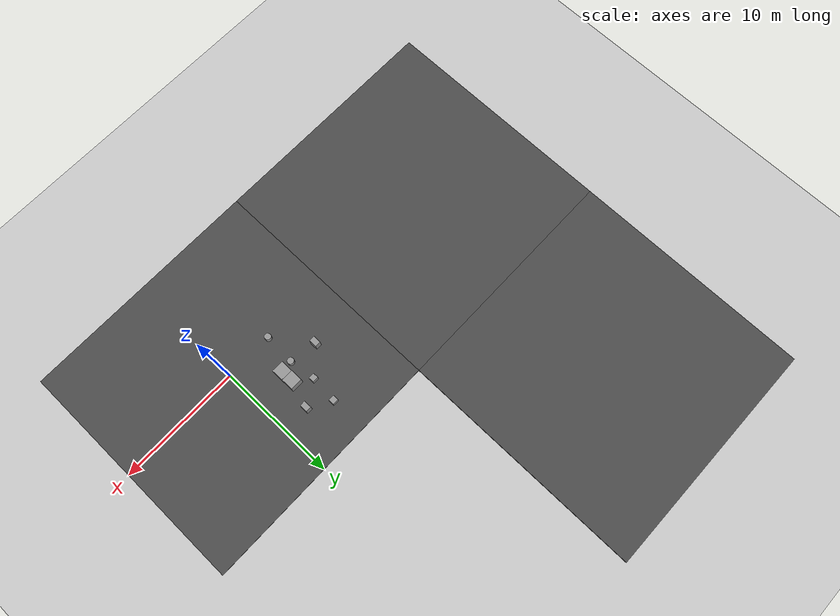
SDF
<sdf version="1.7">
 <world name="default">
  <model name="ground_plane">
   <static>1</static>
   <link name="link">
    <collision name="collision">
     <geometry><plane><normal>0 0 1</normal><size>100 100</size></plane></geometry>
     <surface>
      <contact><collide_bitmask>65535</collide_bitmask></contact>
      <friction><ode><mu>100</mu><mu2>50</mu2></ode></friction>
     </surface>
    </collision>
    <visual name="visual">
     <cast_shadows>0</cast_shadows>
     <geometry><plane><normal>0 0 1</normal><size>100 100</size></plane></geometry>
     <material>
      <script><uri>file://media/materials/scripts/gazebo.material</uri><name>Gazebo/Grey</name></script>
     </material>
    </visual>
   </link>
  </model>
  <model name="asphalt_plane">
   <static>1</static>
   <link name="link">
    <collision name="collision"><geometry><box><size>20 20 0.1</size></box></geometry></collision>
    <visual name="visual">
     <cast_shadows>0</cast_shadows>
     <geometry><box><size>20 20 0.1</size></box></geometry>
     <material>
      <script>
       <uri>model://asphalt_plane/materials/scripts</uri>
       <uri>model://asphalt_plane/materials/textures</uri>
       <name>vrc/asphalt</name>
      </script>
     </material>
    </visual>
   </link>
  </model>
  <model name="asphalt_plane_clone_3">
   <static>1</static>
   <link name="link">
    <collision name="collision"><geometry><box><size>20 20 0.1</size></box></geometry></collision>
    <visual name="visual">
     <cast_shadows>0</cast_shadows>
     <geometry><box><size>20 20 0.1</size></box></geometry>
     <material>
      <script>
       <uri>model://asphalt_plane/materials/scripts</uri>
       <uri>model://asphalt_plane/materials/textures</uri>
       <name>vrc/asphalt</name>
      </script>
     </material>
    </visual>
   </link>
   <pose>-20 0 0 0 -0 0</pose>
  </model>
  <model name="asphalt_plane_clone_4">
   <static>1</static>
   <link name="link">
    <collision name="collision"><geometry><box><size>20 20 0.1</size></box></geometry></collision>
    <visual name="visual">
     <cast_shadows>0</cast_shadows>
     <geometry><box><size>20 20 0.1</size></box></geometry>
     <material>
      <script>
       <uri>model://asphalt_plane/materials/scripts</uri>
       <uri>model://asphalt_plane/materials/textures</uri>
       <name>vrc/asphalt</name>
      </script>
     </material>
    </visual>
   </link>
   <pose>-20 20 0 0 -0 0</pose>
  </model>
  <model name="unit_cylinder">
   <pose>-3.88535 2.58839 0.294836 1e-06 -2e-06 0.000325</pose>
   <link name="link">
    <inertial>
     <mass>1</mass>
     <inertia><ixx>0.145833</ixx><ixy>0</ixy><ixz>0</ixz><iyy>0.145833</iyy><iyz>0</iyz><izz>0.125</izz></inertia>
    </inertial>
    <collision name="collision">
     <geometry><cylinder><radius>0.264047</radius><length>0.48967</length></cylinder></geometry>
    </collision>
    <visual name="visual">
     <geometry><cylinder><radius>0.264047</radius><length>0.48967</length></cylinder></geometry>
     <material>
      <script><name>Gazebo/Grey</name><uri>file://media/materials/scripts/gazebo.material</uri></script>
     </material>
    </visual>
   </link>
  </model>
  <model name="unit_cylinder_clone">
   <pose>-3.99999 2e-05 0.294835 -0 -1e-06 9.5e-05</pose>
   <link name="link">
    <inertial>
     <mass>1</mass>
     <inertia><ixx>0.145833</ixx><ixy>0</ixy><ixz>0</ixz><iyy>0.145833</iyy><iyz>0</iyz><izz>0.125</izz></inertia>
    </inertial>
    <collision name="collision">
     <geometry><cylinder><radius>0.264047</radius><length>0.48967</length></cylinder></geometry>
    </collision>
    <visual name="visual">
     <geometry><cylinder><radius>0.264047</radius><length>0.48967</length></cylinder></geometry>
     <material>
      <script><name>Gazebo/Grey</name><uri>file://media/materials/scripts/gazebo.material</uri></script>
     </material>
    </visual>
   </link>
  </model>
  <model name="unit_box_0_clone_1_clone">
   <pose>-4.15621 4.74188 0.301356 0 -0 1e-06</pose>
   <link name="link">
    <inertial>
     <mass>1</mass>
     <inertia>
      <ixx>0.166667</ixx>
      <ixy>0</ixy>
      <ixz>0</ixz>
      <iyy>0.166667</iyy>
      <iyz>0</iyz>
      <izz>0.166667</izz>
     </inertia>
    </inertial>
    <collision name="collision">
     <geometry><box><size>0.495294 0.467832 0.502712</size></box></geometry>
    </collision>
    <visual name="visual">
     <geometry><box><size>0.495294 0.467832 0.502712</size></box></geometry>
     <material>
      <script><name>Gazebo/Grey</name><uri>file://media/materials/scripts/gazebo.material</uri></script>
     </material>
    </visual>
   </link>
  </model>
  <model name="unit_box_0_clone_1_clone_0">
   <pose>-4 7 0.301356 0 -0 1e-06</pose>
   <link name="link">
    <inertial>
     <mass>1</mass>
     <inertia>
      <ixx>0.166667</ixx>
      <ixy>0</ixy>
      <ixz>0</ixz>
      <iyy>0.166667</iyy>
      <iyz>0</iyz>
      <izz>0.166667</izz>
     </inertia>
    </inertial>
    <collision name="collision">
     <geometry><box><size>0.495294 0.467832 0.502712</size></box></geometry>
    </collision>
    <visual name="visual">
     <geometry><box><size>0.495294 0.467832 0.502712</size></box></geometry>
     <material>
      <script><name>Gazebo/Grey</name><uri>file://media/materials/scripts/gazebo.material</uri></script>
     </material>
    </visual>
   </link>
  </model>
  <model name="unit_box_3_clone">
   <pose>-2.24652 5.9397 0.55 0 -0 0</pose>
   <link name="link">
    <inertial>
     <mass>1</mass>
     <inertia>
      <ixx>0.166667</ixx>
      <ixy>0</ixy>
      <ixz>0</ixz>
      <iyy>0.166667</iyy>
      <iyz>0</iyz>
      <izz>0.166667</izz>
     </inertia>
    </inertial>
    <collision name="collision"><geometry><box><size>0.473217 0.637104 1</size></box></geometry></collision>
    <visual name="visual">
     <geometry><box><size>0.473217 0.637104 1</size></box></geometry>
     <material>
      <script><name>Gazebo/Grey</name><uri>file://media/materials/scripts/gazebo.material</uri></script>
     </material>
    </visual>
   </link>
  </model>
  <model name="unit_box_3_clone_2">
   <pose>-6.12917 2.98269 0.55 0 -0 0</pose>
   <link name="link">
    <inertial>
     <mass>1</mass>
     <inertia>
      <ixx>0.166667</ixx>
      <ixy>0</ixy>
      <ixz>0</ixz>
      <iyy>0.166667</iyy>
      <iyz>0</iyz>
      <izz>0.166667</izz>
     </inertia>
    </inertial>
    <collision name="collision"><geometry><box><size>0.473217 0.637104 1</size></box></geometry></collision>
    <visual name="visual">
     <geometry><box><size>0.473217 0.637104 1</size></box></geometry>
     <material>
      <script><name>Gazebo/Grey</name><uri>file://media/materials/scripts/gazebo.material</uri></script>
     </material>
    </visual>
   </link>
  </model>
  <model name="unit_box_1_clone">
   <pose>-2.90848 2.79422 0.549995 -9e-06 -1e-06 0</pose>
   <link name="link">
    <inertial>
     <mass>1</mass>
     <inertia>
      <ixx>0.166667</ixx>
      <ixy>0</ixy>
      <ixz>0</ixz>
      <iyy>0.166667</iyy>
      <iyz>0</iyz>
      <izz>0.166667</izz>
     </inertia>
    </inertial>
    <collision name="collision"><geometry><box><size>1 1 1</size></box></geometry></collision>
    <visual name="visual">
     <geometry><box><size>1 1 1</size></box></geometry>
     <material>
      <script><name>Gazebo/Grey</name><uri>file://media/materials/scripts/gazebo.material</uri></script>
     </material>
    </visual>
   </link>
  </model>
  <model name="unit_box_1_clone_1">
   <pose>-2.92548 3.79642 0.549995 -9e-06 -1e-06 0</pose>
   <link name="link">
    <inertial>
     <mass>1</mass>
     <inertia>
      <ixx>0.166667</ixx>
      <ixy>0</ixy>
      <ixz>0</ixz>
      <iyy>0.166667</iyy>
      <iyz>0</iyz>
      <izz>0.166667</izz>
     </inertia>
    </inertial>
    <collision name="collision"><geometry><box><size>1 1 1</size></box></geometry></collision>
    <visual name="visual">
     <geometry><box><size>1 1 1</size></box></geometry>
     <material>
      <script><name>Gazebo/Grey</name><uri>file://media/materials/scripts/gazebo.material</uri></script>
     </material>
    </visual>
   </link>
  </model>
 </world>
</sdf>
